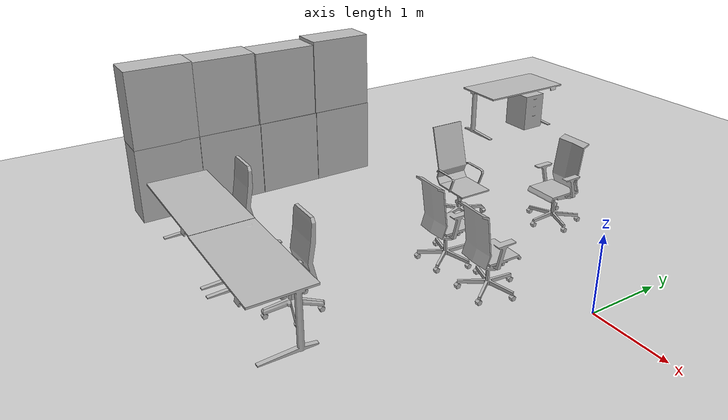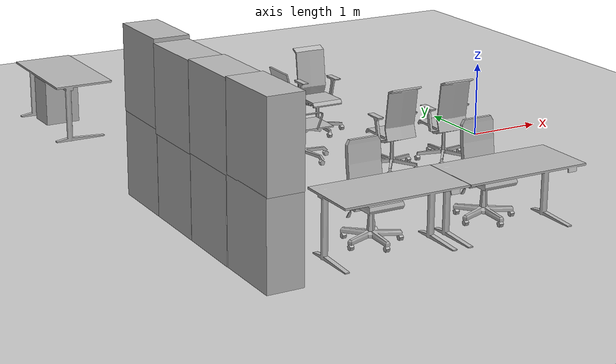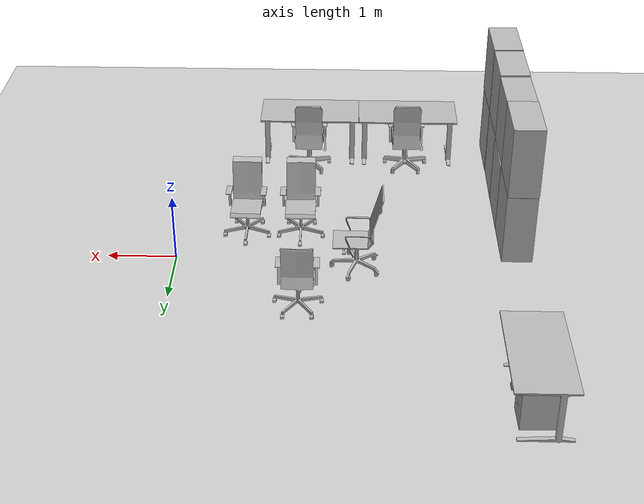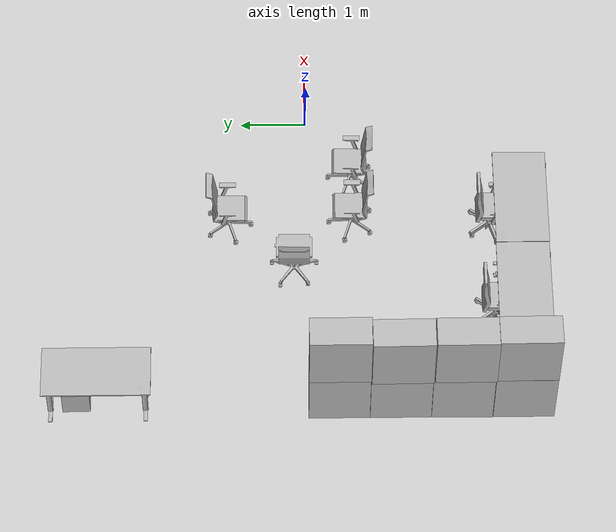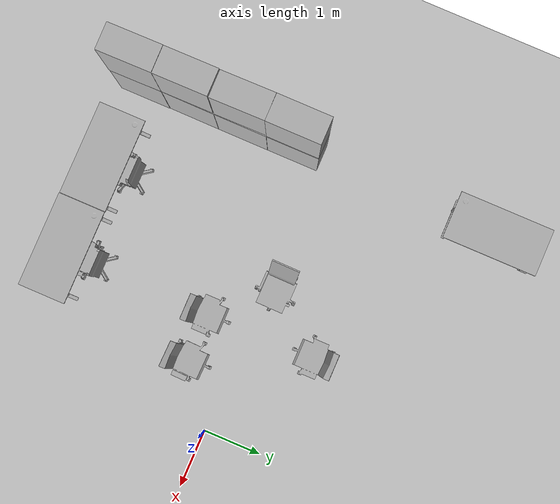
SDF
<sdf version="1.7">
 <world name="default">
  <model name="ground_plane">
   <static>1</static>
   <link name="link">
    <collision name="collision">
     <geometry><plane><normal>0 0 1</normal><size>100 100</size></plane></geometry>
     <surface><friction><ode><mu>100</mu><mu2>50</mu2></ode></friction></surface>
    </collision>
    <visual name="visual">
     <cast_shadows>0</cast_shadows>
     <geometry><plane><normal>0 0 1</normal><size>100 100</size></plane></geometry>
     <material>
      <script><uri>file://media/materials/scripts/gazebo.material</uri><name>Gazebo/Grey</name></script>
     </material>
    </visual>
   </link>
  </model>
  <model name="WhiteCabinet">
   <static>1</static>
   <link name="body">
    <visual name="visual">
     <geometry><mesh><uri>model://WhiteCabinet/meshes/WhiteCabinet.obj</uri></mesh></geometry>
    </visual>
    <collision name="collision">
     <geometry><mesh><uri>model://WhiteCabinet/meshes/WhiteCabinet.obj</uri></mesh></geometry>
    </collision>
   </link>
   <pose>-4.98465 -3.15977 -0.00142 -0.003535 -0 1.57017</pose>
  </model>
  <model name="WhiteCabinet_0">
   <static>1</static>
   <link name="body">
    <visual name="visual">
     <geometry><mesh><uri>model://WhiteCabinet/meshes/WhiteCabinet.obj</uri></mesh></geometry>
    </visual>
    <collision name="collision">
     <geometry><mesh><uri>model://WhiteCabinet/meshes/WhiteCabinet.obj</uri></mesh></geometry>
    </collision>
   </link>
   <pose>-4.98701 -2.25467 0 0 -0 1.56323</pose>
  </model>
  <model name="WhiteCabinet_1">
   <static>1</static>
   <link name="body">
    <visual name="visual">
     <geometry><mesh><uri>model://WhiteCabinet/meshes/WhiteCabinet.obj</uri></mesh></geometry>
    </visual>
    <collision name="collision">
     <geometry><mesh><uri>model://WhiteCabinet/meshes/WhiteCabinet.obj</uri></mesh></geometry>
    </collision>
   </link>
   <pose>-4.98301 -1.35009 0 0 -0 1.56816</pose>
  </model>
  <model name="WhiteCabinet_2">
   <static>1</static>
   <link name="body">
    <visual name="visual">
     <geometry><mesh><uri>model://WhiteCabinet/meshes/WhiteCabinet.obj</uri></mesh></geometry>
    </visual>
    <collision name="collision">
     <geometry><mesh><uri>model://WhiteCabinet/meshes/WhiteCabinet.obj</uri></mesh></geometry>
    </collision>
   </link>
   <pose>-4.98247 -0.446698 0 0 -0 1.57058</pose>
  </model>
  <model name="WhiteCabinet_3">
   <static>1</static>
   <link name="body">
    <visual name="visual">
     <geometry><mesh><uri>model://WhiteCabinet/meshes/WhiteCabinet.obj</uri></mesh></geometry>
    </visual>
    <collision name="collision">
     <geometry><mesh><uri>model://WhiteCabinet/meshes/WhiteCabinet.obj</uri></mesh></geometry>
    </collision>
   </link>
   <pose>-4.9866 -3.16208 1.06765 0 -0 1.57949</pose>
  </model>
  <model name="WhiteCabinet_4">
   <static>1</static>
   <link name="body">
    <visual name="visual">
     <geometry><mesh><uri>model://WhiteCabinet/meshes/WhiteCabinet.obj</uri></mesh></geometry>
    </visual>
    <collision name="collision">
     <geometry><mesh><uri>model://WhiteCabinet/meshes/WhiteCabinet.obj</uri></mesh></geometry>
    </collision>
   </link>
   <pose>-4.9942 -2.27058 1.0512 0 -0 1.57462</pose>
  </model>
  <model name="WhiteCabinet_5">
   <static>1</static>
   <link name="body">
    <visual name="visual">
     <geometry><mesh><uri>model://WhiteCabinet/meshes/WhiteCabinet.obj</uri></mesh></geometry>
    </visual>
    <collision name="collision">
     <geometry><mesh><uri>model://WhiteCabinet/meshes/WhiteCabinet.obj</uri></mesh></geometry>
    </collision>
   </link>
   <pose>-4.99705 -1.35688 1.03296 0 -0 1.58115</pose>
  </model>
  <model name="WhiteCabinet_6">
   <static>1</static>
   <link name="body">
    <visual name="visual">
     <geometry><mesh><uri>model://WhiteCabinet/meshes/WhiteCabinet.obj</uri></mesh></geometry>
    </visual>
    <collision name="collision">
     <geometry><mesh><uri>model://WhiteCabinet/meshes/WhiteCabinet.obj</uri></mesh></geometry>
    </collision>
   </link>
   <pose>-4.99043 -0.451044 1.07867 0 -0 1.56912</pose>
  </model>
  <model name="AdjTable">
   <static>1</static>
   <link name="body">
    <visual name="visual">
     <geometry><mesh><uri>model://AdjTable/meshes/AdjTable.obj</uri></mesh></geometry>
    </visual>
    <collision name="collision">
     <geometry><mesh><uri>model://AdjTable/meshes/AdjTable_Col.obj</uri></mesh></geometry>
    </collision>
   </link>
   <pose>-4.8379 3.10819 0 0 -0 1.57224</pose>
  </model>
  <model name="OfficeChairBlue">
   <static>1</static>
   <link name="body">
    <visual name="visual"><geometry><mesh><uri>model://Drawer/meshes/Drawer.obj</uri></mesh></geometry></visual>
    <collision name="collision">
     <geometry><mesh><uri>model://Drawer/meshes/Drawer.obj</uri></mesh></geometry>
    </collision>
   </link>
   <pose>-4.82833 3.42883 0 0 -0 1.58972</pose>
  </model>
  <model name="AdjTable_0">
   <static>1</static>
   <link name="body">
    <visual name="visual">
     <geometry><mesh><uri>model://AdjTable/meshes/AdjTable.obj</uri></mesh></geometry>
    </visual>
    <collision name="collision">
     <geometry><mesh><uri>model://AdjTable/meshes/AdjTable_Col.obj</uri></mesh></geometry>
    </collision>
   </link>
   <pose>-3.47629 -3.21979 0 0 -0 0</pose>
  </model>
  <model name="AdjTable_1">
   <static>1</static>
   <link name="body">
    <visual name="visual">
     <geometry><mesh><uri>model://AdjTable/meshes/AdjTable.obj</uri></mesh></geometry>
    </visual>
    <collision name="collision">
     <geometry><mesh><uri>model://AdjTable/meshes/AdjTable_Col.obj</uri></mesh></geometry>
    </collision>
   </link>
   <pose>-1.8698 -3.22694 0 0 -0 0</pose>
  </model>
  <model name="OfficeChairBlue_0">
   <static>1</static>
   <link name="body">
    <visual name="visual">
     <geometry><mesh><uri>model://OfficeChairBlue/meshes/OfficeChairBlue.obj</uri></mesh></geometry>
    </visual>
    <collision name="collision">
     <geometry><mesh><uri>model://OfficeChairBlue/meshes/OfficeChairBlue_Col.obj</uri></mesh></geometry>
    </collision>
   </link>
   <pose>-3.44939 -2.94333 0 0 -0 0</pose>
  </model>
  <model name="OfficeChairBlue_1">
   <static>1</static>
   <link name="body">
    <visual name="visual">
     <geometry><mesh><uri>model://OfficeChairBlue/meshes/OfficeChairBlue.obj</uri></mesh></geometry>
    </visual>
    <collision name="collision">
     <geometry><mesh><uri>model://OfficeChairBlue/meshes/OfficeChairBlue_Col.obj</uri></mesh></geometry>
    </collision>
   </link>
   <pose>-1.866 -2.90648 0 0 -0 0</pose>
  </model>
  <model name="OfficeChairBlack">
   <static>1</static>
   <link name="body">
    <visual name="visual">
     <geometry><mesh><uri>model://OfficeChairBlack/meshes/OfficeChairBlack.obj</uri></mesh></geometry>
    </visual>
    <collision name="collision">
     <geometry><mesh><uri>model://OfficeChairBlack/meshes/OfficeChairBlack_Col.obj</uri></mesh></geometry>
    </collision>
   </link>
   <pose>-2.64308 0.194592 0 0 -0 1.5596</pose>
  </model>
  <model name="OfficeChairGrey">
   <static>1</static>
   <link name="body">
    <visual name="visual">
     <geometry><mesh><uri>model://OfficeChairGrey/meshes/OfficeChairGrey.obj</uri></mesh></geometry>
    </visual>
    <collision name="collision">
     <geometry><mesh><uri>model://OfficeChairGrey/meshes/OfficeChairGrey_Col.obj</uri></mesh></geometry>
    </collision>
   </link>
   <pose>-1.83699 1.06004 0 0 -0 0</pose>
  </model>
  <model name="OfficeChairGrey_1">
   <static>1</static>
   <link name="body">
    <visual name="visual">
     <geometry><mesh><uri>model://OfficeChairGrey/meshes/OfficeChairGrey.obj</uri></mesh></geometry>
    </visual>
    <collision name="collision">
     <geometry><mesh><uri>model://OfficeChairGrey/meshes/OfficeChairGrey_Col.obj</uri></mesh></geometry>
    </collision>
   </link>
   <pose>-0.999896 -0.552157 0 0 -0 3.11791</pose>
  </model>
  <model name="OfficeChairGrey_2">
   <static>1</static>
   <link name="body">
    <visual name="visual">
     <geometry><mesh><uri>model://OfficeChairGrey/meshes/OfficeChairGrey.obj</uri></mesh></geometry>
    </visual>
    <collision name="collision">
     <geometry><mesh><uri>model://OfficeChairGrey/meshes/OfficeChairGrey_Col.obj</uri></mesh></geometry>
    </collision>
   </link>
   <pose>-1.80808 -0.553924 -0 0 0 -3.14069</pose>
  </model>
 </world>
</sdf>
